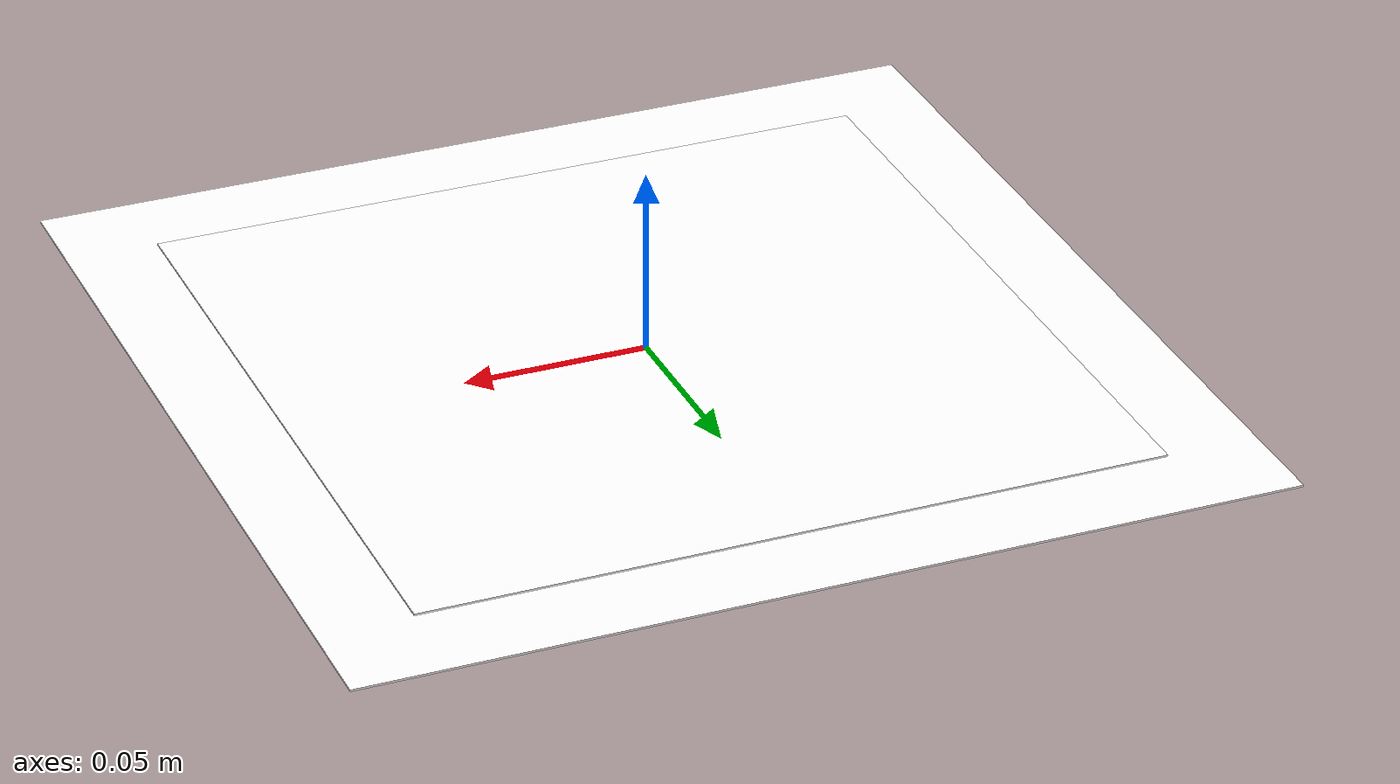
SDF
<?xml version="1.0" ?>
<sdf version="1.9">
  <model name="apriltag_20">
    <static>true</static>
    <link name="link">
      <visual name="border_visual">
        <pose>0 0 -0.00025 0 0 0</pose>
        <geometry><box><size>0.25 0.25 0.0005</size></box></geometry>
        <material>
          <ambient>1.0 1.0 1.0 1</ambient>
          <diffuse>1.0 1.0 1.0 1</diffuse>
          <specular>0.1 0.1 0.1 1</specular>
        </material>
      </visual>
      <visual name="tag_visual">
        <geometry><box><size>0.2 0.2 0.001</size></box></geometry>
        <material>
          <diffuse>1 1 1 1</diffuse>
          <pbr><metal>
            <albedo_map>model://apriltag_20/textures/tag36h11_id20.png</albedo_map>
            <metalness>0.0</metalness>
            <roughness>1.0</roughness>
          </metal></pbr>
        </material>
      </visual>
    </link>
  </model>
</sdf>
